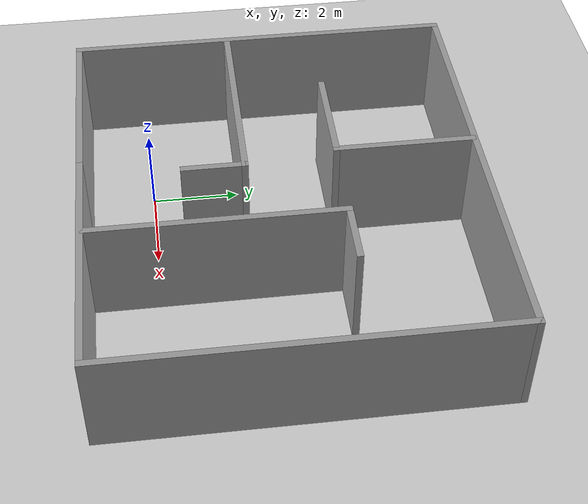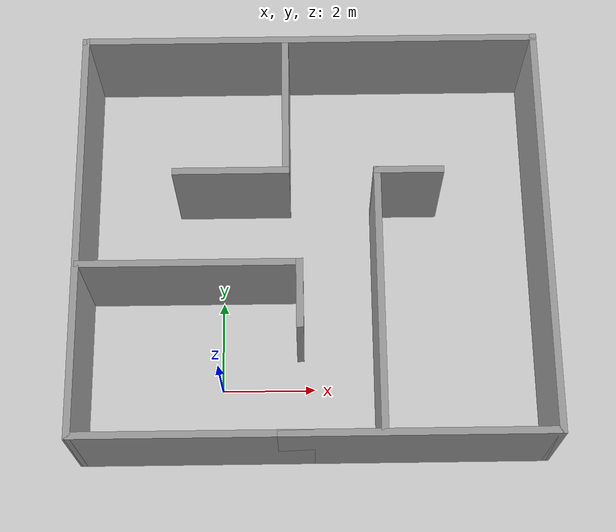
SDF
<sdf version="1.7">
 <world name="default">
  <light name="sun" type="directional">
   <pose>0 0 10 0 -0 0</pose>
   <diffuse>0.8 0.8 0.8 1</diffuse>
   <specular>0.2 0.2 0.2 1</specular>
   <attenuation>
    <range>1000</range>
    <constant>0.9</constant>
    <linear>0.01</linear>
    <quadratic>0.001</quadratic>
   </attenuation>
   <direction>-0.5 0.1 -0.9</direction>
   <spot><inner_angle>0</inner_angle><outer_angle>0</outer_angle><falloff>0</falloff></spot>
  </light>
  <model name="ground_plane">
   <static>1</static>
   <link name="link">
    <collision name="collision">
     <geometry><plane><normal>0 0 1</normal><size>100 100</size></plane></geometry>
     <surface><friction><ode><mu>100</mu><mu2>50</mu2></ode></friction></surface>
    </collision>
    <visual name="visual">
     <cast_shadows>0</cast_shadows>
     <geometry><plane><normal>0 0 1</normal><size>100 100</size></plane></geometry>
     <material>
      <script><uri>file://media/materials/scripts/gazebo.material</uri><name>Gazebo/Grey</name></script>
     </material>
    </visual>
   </link>
  </model>
  <gravity>0 0 -9.8</gravity>
  <magnetic_field>6e-06 2.3e-05 -4.2e-05</magnetic_field>
  <atmosphere type="adiabatic"/>
  <physics type="ode">
   <max_step_size>0.001</max_step_size>
   <real_time_factor>1</real_time_factor>
   <real_time_update_rate>1000</real_time_update_rate>
  </physics>
  <scene><ambient>0.4 0.4 0.4 1</ambient><background>0.7 0.7 0.7 1</background><shadows>1</shadows></scene>
  <audio><device>default</device></audio>
  <spherical_coordinates>
   <surface_model>EARTH_WGS84</surface_model>
   <latitude_deg>0</latitude_deg>
   <longitude_deg>0</longitude_deg>
   <elevation>0</elevation>
   <heading_deg>0</heading_deg>
  </spherical_coordinates>
  <model name="room">
   <pose>1.96627 2.88471 0 0 -0 0</pose>
   <link name="Wall_0">
    <collision name="Wall_0_Collision">
     <geometry><box><size>5.75 0.15 2.5</size></box></geometry>
     <pose>0 0 1.25 0 -0 0</pose>
    </collision>
    <visual name="Wall_0_Visual">
     <pose>0 0 1.25 0 -0 0</pose>
     <geometry><box><size>5.75 0.15 2.5</size></box></geometry>
     <material>
      <script><uri>file://media/materials/scripts/gazebo.material</uri><name>Gazebo/Grey</name></script>
      <ambient>1 1 1 1</ambient>
     </material>
     <meta><layer>0</layer></meta>
    </visual>
    <pose>2.125 -4.425 0 0 -0 0</pose>
   </link>
   <link name="Wall_1">
    <collision name="Wall_1_Collision">
     <geometry><box><size>9 0.15 2.5</size></box></geometry>
     <pose>0 0 1.25 0 -0 0</pose>
    </collision>
    <visual name="Wall_1_Visual">
     <pose>0 0 1.25 0 -0 0</pose>
     <geometry><box><size>9 0.15 2.5</size></box></geometry>
     <material>
      <script><uri>file://media/materials/scripts/gazebo.material</uri><name>Gazebo/Grey</name></script>
      <ambient>1 1 1 1</ambient>
     </material>
     <meta><layer>0</layer></meta>
    </visual>
    <pose>4.925 -0 0 0 -0 1.5708</pose>
   </link>
   <link name="Wall_10">
    <collision name="Wall_10_Collision">
     <geometry><box><size>1.5 0.15 2.5</size></box></geometry>
     <pose>0 0 1.25 0 -0 0</pose>
    </collision>
    <visual name="Wall_10_Visual">
     <pose>0 0 1.25 0 -0 0</pose>
     <geometry><box><size>1.5 0.15 2.5</size></box></geometry>
     <material>
      <script><uri>file://media/materials/scripts/gazebo.material</uri><name>Gazebo/Grey</name></script>
      <ambient>1 1 1 1</ambient>
     </material>
     <meta><layer>0</layer></meta>
    </visual>
    <pose>-0.274674 -1.47923 0 0 -0 -1.5708</pose>
   </link>
   <link name="Wall_12">
    <collision name="Wall_12_Collision">
     <geometry><box><size>5.75 0.15 2.5</size></box></geometry>
     <pose>0 0 1.25 0 -0 0</pose>
    </collision>
    <visual name="Wall_12_Visual">
     <pose>0 0 1.25 0 -0 0</pose>
     <geometry><box><size>5.75 0.15 2.5</size></box></geometry>
     <material>
      <script><uri>file://media/materials/scripts/gazebo.material</uri><name>Gazebo/Grey</name></script>
      <ambient>1 1 1 1</ambient>
     </material>
     <meta><layer>0</layer></meta>
    </visual>
    <pose>1.39594 -1.54099 0 0 -0 -1.5708</pose>
   </link>
   <link name="Wall_14">
    <collision name="Wall_14_Collision">
     <geometry><box><size>1.5 0.15 2.5</size></box></geometry>
     <pose>0 0 1.25 0 -0 0</pose>
    </collision>
    <visual name="Wall_14_Visual">
     <pose>0 0 1.25 0 -0 0</pose>
     <geometry><box><size>1.5 0.15 2.5</size></box></geometry>
     <material>
      <script><uri>file://media/materials/scripts/gazebo.material</uri><name>Gazebo/Grey</name></script>
      <ambient>1 1 1 1</ambient>
     </material>
     <meta><layer>0</layer></meta>
    </visual>
    <pose>2.07094 1.25901 0 0 -0 0</pose>
   </link>
   <link name="Wall_2">
    <collision name="Wall_2_Collision">
     <geometry><box><size>10 0.15 2.5</size></box></geometry>
     <pose>0 0 1.25 0 -0 0</pose>
    </collision>
    <visual name="Wall_2_Visual">
     <pose>0 0 1.25 0 -0 0</pose>
     <geometry><box><size>10 0.15 2.5</size></box></geometry>
     <material>
      <script><uri>file://media/materials/scripts/gazebo.material</uri><name>Gazebo/Grey</name></script>
      <ambient>1 1 1 1</ambient>
     </material>
     <meta><layer>0</layer></meta>
    </visual>
    <pose>0 4.425 0 0 -0 3.14159</pose>
   </link>
   <link name="Wall_3">
    <collision name="Wall_3_Collision">
     <geometry><box><size>9 0.15 2.5</size></box></geometry>
     <pose>0 0 1.25 0 -0 0</pose>
    </collision>
    <visual name="Wall_3_Visual">
     <pose>0 0 1.25 0 -0 0</pose>
     <geometry><box><size>9 0.15 2.5</size></box></geometry>
     <material>
      <script><uri>file://media/materials/scripts/gazebo.material</uri><name>Gazebo/Grey</name></script>
      <ambient>1 1 1 1</ambient>
     </material>
     <meta><layer>0</layer></meta>
    </visual>
    <pose>-4.925 -0 0 0 -0 -1.5708</pose>
   </link>
   <link name="Wall_4">
    <collision name="Wall_4_Collision">
     <geometry><box><size>5 0.15 2.5</size></box></geometry>
     <pose>0 0 1.25 0 -0 0</pose>
    </collision>
    <visual name="Wall_4_Visual">
     <pose>0 0 1.25 0 -0 0</pose>
     <geometry><box><size>5 0.15 2.5</size></box></geometry>
     <material>
      <script><uri>file://media/materials/scripts/gazebo.material</uri><name>Gazebo/Grey</name></script>
      <ambient>1 1 1 1</ambient>
     </material>
     <meta><layer>0</layer></meta>
    </visual>
    <pose>-2.5 -4.425 0 0 -0 0</pose>
   </link>
   <link name="Wall_6">
    <collision name="Wall_6_Collision">
     <geometry><box><size>3.25 0.15 2.5</size></box></geometry>
     <pose>0 0 1.25 0 -0 0</pose>
    </collision>
    <visual name="Wall_6_Visual">
     <pose>0 0 1.25 0 -0 0</pose>
     <geometry><box><size>3.25 0.15 2.5</size></box></geometry>
     <material>
      <script><uri>file://media/materials/scripts/gazebo.material</uri><name>Gazebo/Grey</name></script>
      <ambient>1 1 1 1</ambient>
     </material>
     <meta><layer>0</layer></meta>
    </visual>
    <pose>-0.545927 2.82409 0 0 -0 -1.5708</pose>
   </link>
   <link name="Wall_7">
    <collision name="Wall_7_Collision">
     <geometry><box><size>2.5 0.15 2.5</size></box></geometry>
     <pose>0 0 1.25 0 -0 0</pose>
    </collision>
    <visual name="Wall_7_Visual">
     <pose>0 0 1.25 0 -0 0</pose>
     <geometry><box><size>2.5 0.15 2.5</size></box></geometry>
     <material>
      <script><uri>file://media/materials/scripts/gazebo.material</uri><name>Gazebo/Grey</name></script>
      <ambient>1 1 1 1</ambient>
     </material>
     <meta><layer>0</layer></meta>
    </visual>
    <pose>-1.72093 1.27409 0 0 -0 3.14159</pose>
   </link>
   <link name="Wall_9">
    <collision name="Wall_9_Collision">
     <geometry><box><size>4.75 0.15 2.5</size></box></geometry>
     <pose>0 0 1.25 0 -0 0</pose>
    </collision>
    <visual name="Wall_9_Visual">
     <pose>0 0 1.25 0 -0 0</pose>
     <geometry><box><size>4.75 0.15 2.5</size></box></geometry>
     <material>
      <script><uri>file://media/materials/scripts/gazebo.material</uri><name>Gazebo/Grey</name></script>
      <ambient>1 1 1 1</ambient>
     </material>
     <meta><layer>0</layer></meta>
    </visual>
    <pose>-2.57467 -0.804225 0 0 -0 0</pose>
   </link>
   <static>1</static>
  </model>
 </world>
</sdf>
